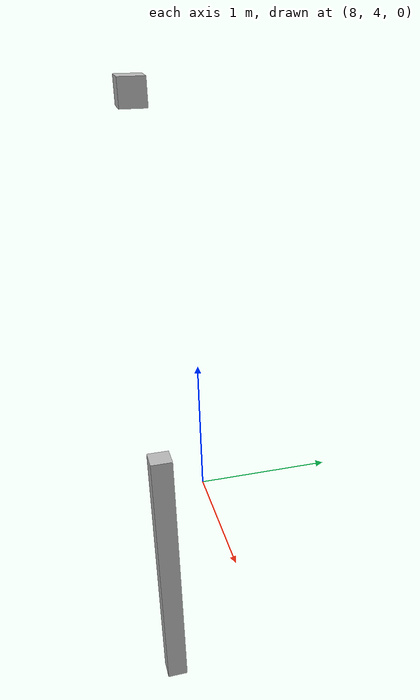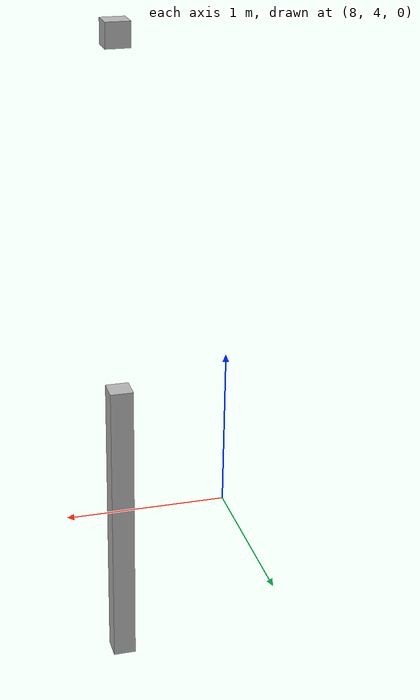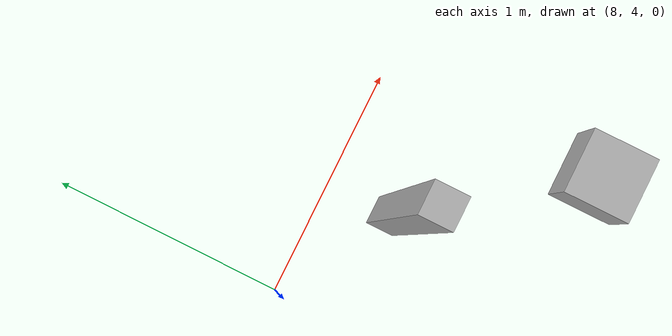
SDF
<sdf version="1.7">
 <world name="default">
  <model name="orthogonal_747_2.000.15_TS">
   <static>1</static>
   <link name="z_link_1_4_7">
    <inertial>
     <mass>1</mass>
     <inertia>
      <ixx>0.166667</ixx>
      <ixy>0</ixy>
      <ixz>0</ixz>
      <iyy>0.166667</iyy>
      <iyz>0</iyz>
      <izz>0.166667</izz>
     </inertia>
    </inertial>
    <pose>15.05 8.6 2.15 0 -0 0</pose>
    <visual name="visual_0">
     <laser_retro>1646</laser_retro>
     <geometry><box><size>0.15 1e-06 2</size></box></geometry>
     <material>
      <script><name>Gazebo/Grey</name><uri>file://media/materials/scripts/gazebo.material</uri></script>
      <shader type="pixel"><normal_map>__default__</normal_map></shader>
      <ambient>0.678 0.498 0.659 1</ambient>
      <diffuse>0.7 0.7 0.7 1</diffuse>
      <specular>0.01 0.01 0.01 1</specular>
      <emissive>0 0 0 1</emissive>
     </material>
     <pose>0 -0.075 0 0 -0 0</pose>
     <transparency>1</transparency>
    </visual>
    <visual name="visual_1">
     <laser_retro>1647</laser_retro>
     <geometry><box><size>0.15 1e-06 2</size></box></geometry>
     <material>
      <script><name>Gazebo/Grey</name><uri>file://media/materials/scripts/gazebo.material</uri></script>
      <shader type="pixel"><normal_map>__default__</normal_map></shader>
      <ambient>0.447 0.624 0.812 1</ambient>
      <diffuse>0.7 0.7 0.7 1</diffuse>
      <specular>0.01 0.01 0.01 1</specular>
      <emissive>0 0 0 1</emissive>
     </material>
     <pose>0 0.075 0 0 -0 0</pose>
     <transparency>1</transparency>
    </visual>
    <visual name="visual_2">
     <laser_retro>1648</laser_retro>
     <geometry><box><size>0.15 0.15 1e-06</size></box></geometry>
     <material>
      <script><name>Gazebo/Grey</name><uri>file://media/materials/scripts/gazebo.material</uri></script>
      <shader type="pixel"><normal_map>__default__</normal_map></shader>
      <ambient>0.988 0.686 0.243 1</ambient>
      <diffuse>0.7 0.7 0.7 1</diffuse>
      <specular>0.01 0.01 0.01 1</specular>
      <emissive>0 0 0 1</emissive>
     </material>
     <pose>0 0 -1 0 -0 0</pose>
     <transparency>1</transparency>
    </visual>
    <visual name="visual_3">
     <laser_retro>1649</laser_retro>
     <geometry><box><size>1e-06 0.15 2</size></box></geometry>
     <material>
      <script><name>Gazebo/Grey</name><uri>file://media/materials/scripts/gazebo.material</uri></script>
      <shader type="pixel"><normal_map>__default__</normal_map></shader>
      <ambient>0.988 0.914 0.31 1</ambient>
      <diffuse>0.7 0.7 0.7 1</diffuse>
      <specular>0.01 0.01 0.01 1</specular>
      <emissive>0 0 0 1</emissive>
     </material>
     <pose>0.075 0 0 0 -0 0</pose>
     <transparency>1</transparency>
    </visual>
    <visual name="visual_4">
     <laser_retro>1650</laser_retro>
     <geometry><box><size>0.15 0.15 1e-06</size></box></geometry>
     <material>
      <script><name>Gazebo/Grey</name><uri>file://media/materials/scripts/gazebo.material</uri></script>
      <shader type="pixel"><normal_map>__default__</normal_map></shader>
      <ambient>0.937 0.161 0.161 1</ambient>
      <diffuse>0.7 0.7 0.7 1</diffuse>
      <specular>0.01 0.01 0.01 1</specular>
      <emissive>0 0 0 1</emissive>
     </material>
     <pose>0 0 1 0 -0 0</pose>
     <transparency>1</transparency>
    </visual>
    <visual name="visual_5">
     <laser_retro>1651</laser_retro>
     <geometry><box><size>1e-06 0.15 2</size></box></geometry>
     <material>
      <script><name>Gazebo/Grey</name><uri>file://media/materials/scripts/gazebo.material</uri></script>
      <shader type="pixel"><normal_map>__default__</normal_map></shader>
      <ambient>0.541 0.886 0.204 1</ambient>
      <diffuse>0.7 0.7 0.7 1</diffuse>
      <specular>0.01 0.01 0.01 1</specular>
      <emissive>0 0 0 1</emissive>
     </material>
     <pose>-0.075 0 0 0 -0 0</pose>
     <transparency>1</transparency>
    </visual>
    <visual name="visual_texture">
     <geometry><box><size>0.149985 0.149985 1.9998</size></box></geometry>
     <material>
      <script>
       <uri>model://BASE_MODELS/simple_block_v2_textured/materials/scripts</uri>
       <uri>model://BASE_MODELS/simple_block_v2_textured/materials/textures</uri>
       <name>metal</name>
      </script>
     </material>
     <laser_retro>1652</laser_retro>
    </visual>
    <collision name="collision">
     <geometry><box><size>0.15 0.15 2</size></box></geometry>
     <surface>
      <friction>
       <ode><mu>1</mu><mu2>1</mu2><fdir1>0 0 0</fdir1><slip1>0</slip1><slip2>0</slip2></ode>
       <torsional>
        <coefficient>1</coefficient>
        <patch_radius>0</patch_radius>
        <surface_radius>0</surface_radius>
        <use_patch_radius>1</use_patch_radius>
        <ode><slip>0</slip></ode>
       </torsional>
      </friction>
      <bounce><restitution_coefficient>0</restitution_coefficient><threshold>1e+06</threshold></bounce>
      <contact>
       <collide_without_contact>0</collide_without_contact>
       <collide_without_contact_bitmask>1</collide_without_contact_bitmask>
       <collide_bitmask>1</collide_bitmask>
       <ode>
        <soft_cfm>0</soft_cfm>
        <soft_erp>0.2</soft_erp>
        <kp>1e+13</kp>
        <kd>1</kd>
        <max_vel>0.01</max_vel>
        <min_depth>0</min_depth>
       </ode>
       <bullet>
        <split_impulse>1</split_impulse>
        <split_impulse_penetration_threshold>-0.01</split_impulse_penetration_threshold>
        <soft_cfm>0</soft_cfm>
        <soft_erp>0.2</soft_erp>
        <kp>1e+13</kp>
        <kd>1</kd>
       </bullet>
      </contact>
     </surface>
    </collision>
   </link>
   <link name="u_link_2_4_7">
    <inertial>
     <mass>1</mass>
     <inertia>
      <ixx>0.166667</ixx>
      <ixy>0</ixy>
      <ixz>0</ixz>
      <iyy>0.166667</iyy>
      <iyz>0</iyz>
      <izz>0.166667</izz>
     </inertia>
    </inertial>
    <pose>15.05 8.6 5.375 0 -0 0</pose>
    <visual name="visual_0">
     <laser_retro>2542</laser_retro>
     <geometry><box><size>0.15 1e-06 0.15</size></box></geometry>
     <material>
      <script><name>Gazebo/Grey</name><uri>file://media/materials/scripts/gazebo.material</uri></script>
      <shader type="pixel"><normal_map>__default__</normal_map></shader>
      <ambient>0.678 0.498 0.659 1</ambient>
      <diffuse>0.7 0.7 0.7 1</diffuse>
      <specular>0.01 0.01 0.01 1</specular>
      <emissive>0 0 0 1</emissive>
     </material>
     <pose>0 -0.075 0 0 -0 0</pose>
     <transparency>1</transparency>
    </visual>
    <visual name="visual_1">
     <laser_retro>2543</laser_retro>
     <geometry><box><size>0.15 1e-06 0.15</size></box></geometry>
     <material>
      <script><name>Gazebo/Grey</name><uri>file://media/materials/scripts/gazebo.material</uri></script>
      <shader type="pixel"><normal_map>__default__</normal_map></shader>
      <ambient>0.447 0.624 0.812 1</ambient>
      <diffuse>0.7 0.7 0.7 1</diffuse>
      <specular>0.01 0.01 0.01 1</specular>
      <emissive>0 0 0 1</emissive>
     </material>
     <pose>0 0.075 0 0 -0 0</pose>
     <transparency>1</transparency>
    </visual>
    <visual name="visual_2">
     <laser_retro>2544</laser_retro>
     <geometry><box><size>0.15 0.15 1e-06</size></box></geometry>
     <material>
      <script><name>Gazebo/Grey</name><uri>file://media/materials/scripts/gazebo.material</uri></script>
      <shader type="pixel"><normal_map>__default__</normal_map></shader>
      <ambient>0.988 0.686 0.243 1</ambient>
      <diffuse>0.7 0.7 0.7 1</diffuse>
      <specular>0.01 0.01 0.01 1</specular>
      <emissive>0 0 0 1</emissive>
     </material>
     <pose>0 0 -0.075 0 -0 0</pose>
     <transparency>1</transparency>
    </visual>
    <visual name="visual_3">
     <laser_retro>2545</laser_retro>
     <geometry><box><size>1e-06 0.15 0.15</size></box></geometry>
     <material>
      <script><name>Gazebo/Grey</name><uri>file://media/materials/scripts/gazebo.material</uri></script>
      <shader type="pixel"><normal_map>__default__</normal_map></shader>
      <ambient>0.988 0.914 0.31 1</ambient>
      <diffuse>0.7 0.7 0.7 1</diffuse>
      <specular>0.01 0.01 0.01 1</specular>
      <emissive>0 0 0 1</emissive>
     </material>
     <pose>0.075 0 0 0 -0 0</pose>
     <transparency>1</transparency>
    </visual>
    <visual name="visual_4">
     <laser_retro>2546</laser_retro>
     <geometry><box><size>0.15 0.15 1e-06</size></box></geometry>
     <material>
      <script><name>Gazebo/Grey</name><uri>file://media/materials/scripts/gazebo.material</uri></script>
      <shader type="pixel"><normal_map>__default__</normal_map></shader>
      <ambient>0.937 0.161 0.161 1</ambient>
      <diffuse>0.7 0.7 0.7 1</diffuse>
      <specular>0.01 0.01 0.01 1</specular>
      <emissive>0 0 0 1</emissive>
     </material>
     <pose>0 0 0.075 0 -0 0</pose>
     <transparency>1</transparency>
    </visual>
    <visual name="visual_5">
     <laser_retro>2547</laser_retro>
     <geometry><box><size>1e-06 0.15 0.15</size></box></geometry>
     <material>
      <script><name>Gazebo/Grey</name><uri>file://media/materials/scripts/gazebo.material</uri></script>
      <shader type="pixel"><normal_map>__default__</normal_map></shader>
      <ambient>0.541 0.886 0.204 1</ambient>
      <diffuse>0.7 0.7 0.7 1</diffuse>
      <specular>0.01 0.01 0.01 1</specular>
      <emissive>0 0 0 1</emissive>
     </material>
     <pose>-0.075 0 0 0 -0 0</pose>
     <transparency>1</transparency>
    </visual>
    <visual name="visual_texture">
     <geometry><box><size>0.149985 0.149985 0.149985</size></box></geometry>
     <material>
      <script>
       <uri>model://BASE_MODELS/simple_block_v2_textured/materials/scripts</uri>
       <uri>model://BASE_MODELS/simple_block_v2_textured/materials/textures</uri>
       <name>metal</name>
      </script>
     </material>
     <laser_retro>2548</laser_retro>
    </visual>
    <collision name="collision">
     <geometry><box><size>0.15 0.15 0.15</size></box></geometry>
     <surface>
      <friction>
       <ode><mu>1</mu><mu2>1</mu2><fdir1>0 0 0</fdir1><slip1>0</slip1><slip2>0</slip2></ode>
       <torsional>
        <coefficient>1</coefficient>
        <patch_radius>0</patch_radius>
        <surface_radius>0</surface_radius>
        <use_patch_radius>1</use_patch_radius>
        <ode><slip>0</slip></ode>
       </torsional>
      </friction>
      <bounce><restitution_coefficient>0</restitution_coefficient><threshold>1e+06</threshold></bounce>
      <contact>
       <collide_without_contact>0</collide_without_contact>
       <collide_without_contact_bitmask>1</collide_without_contact_bitmask>
       <collide_bitmask>1</collide_bitmask>
       <ode>
        <soft_cfm>0</soft_cfm>
        <soft_erp>0.2</soft_erp>
        <kp>1e+13</kp>
        <kd>1</kd>
        <max_vel>0.01</max_vel>
        <min_depth>0</min_depth>
       </ode>
       <bullet>
        <split_impulse>1</split_impulse>
        <split_impulse_penetration_threshold>-0.01</split_impulse_penetration_threshold>
        <soft_cfm>0</soft_cfm>
        <soft_erp>0.2</soft_erp>
        <kp>1e+13</kp>
        <kd>1</kd>
       </bullet>
      </contact>
     </surface>
    </collision>
   </link>
   <pose>-6.47624 -5 -2.5 0 -0 0</pose>
  </model>
 </world>
</sdf>
